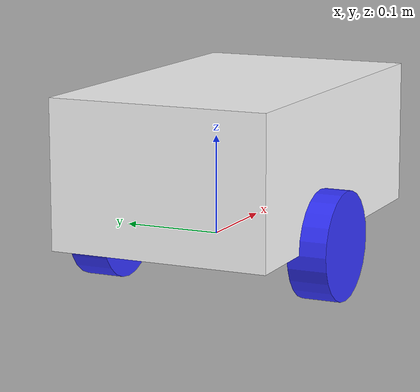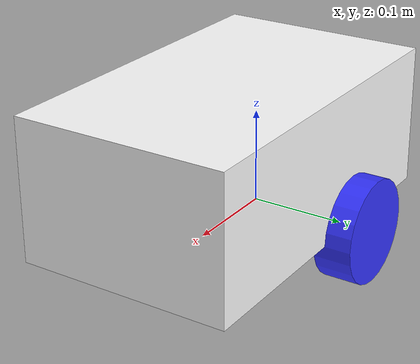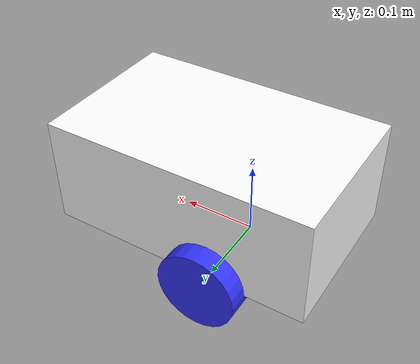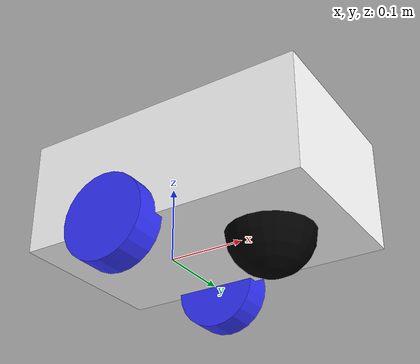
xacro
<?xml version="1.0"?>

<robot xmlns:xacro="http://www.ros.org/wiki/xacro">

    <xacro:include filename="inertial_macros.xacro"/>

    <!-- KONSTANTA MEKANIKAL                                               -->

    <!-- Sumber kebenaran: digital_twin_enhanced.py                        -->

    <!-- WHEEL_SEPARATION = 0.240 m → jarak antar roda                    -->

    <!-- WHEEL_DIAMETER   = 0.110 m → radius = 0.055 m                   -->

    <xacro:property name="wheel_separation" value="0.240"/>

    <xacro:property name="wheel_radius"     value="0.055"/>

    <xacro:property name="wheel_width"      value="0.040"/>

    <!-- Material -->

    <material name="white">  <color rgba="1 1 1 1"/>         </material>

    <material name="orange"> <color rgba="1 0.3 0.1 1"/>     </material>

    <material name="blue">   <color rgba="0.2 0.2 1 1"/>     </material>

    <material name="black">  <color rgba="0 0 0 1"/>         </material>

    <material name="red">    <color rgba="1 0 0 1"/>         </material>

    <!-- BASE LINK — titik referensi tengah antara dua roda aktif         -->

    <link name="base_link"/>

    <!-- BASE FOOTPRINT — proyeksi base_link ke lantai                    -->

    <!-- slam_toolbox mengharapkan frame ini                              -->

    <joint name="base_footprint_joint" type="fixed">

        <parent link="base_link"/>

        <child  link="base_footprint"/>

        <origin xyz="0 0 0" rpy="0 0 0"/>

    </joint>

    <link name="base_footprint"/>

    <!-- CHASSIS                                                           -->

    <joint name="chassis_joint" type="fixed">

        <parent link="base_link"/>

        <child  link="chassis"/>

        <origin xyz="-0.1 0 0"/>

    </joint>

    <link name="chassis">

        <visual>

            <origin xyz="0.15 0 0.075"/>

            <geometry>

                <box size="0.37 0.225 0.15"/>

            </geometry>

            <material name="white"/>

        </visual>

        <collision>

            <origin xyz="0.15 0 0.075"/>

            <geometry>

                <box size="0.37 0.225 0.15"/>

            </geometry>

        </collision>

        <xacro:inertial_box mass="0.5" x="0.37" y="0.225" z="0.15">

            <origin xyz="0.15 0 0.075" rpy="0 0 0"/>

        </xacro:inertial_box>

    </link>

    <gazebo reference="chassis">

        <material>Gazebo/White</material>

    </gazebo>

    <!-- LEFT WHEEL                                                        -->

    <!-- y = +WHEEL_SEPARATION/2 = +0.120 m                              -->

    <!-- KOREKSI dari amr_ws lama: 0.13 → 0.120                          -->

    <joint name="left_wheel_joint" type="continuous">

        <parent link="base_link"/>

        <child  link="left_wheel"/>

        <origin xyz="0 ${wheel_separation/2} 0"

                rpy="-${pi/2} 0 0"/>

        <axis xyz="0 0 1"/>

    </joint>

    <link name="left_wheel">

        <visual>

            <geometry>

                <cylinder radius="${wheel_radius}" length="${wheel_width}"/>

            </geometry>

            <material name="blue"/>

        </visual>

        <collision>

            <geometry>

                <cylinder radius="${wheel_radius}" length="${wheel_width}"/>

            </geometry>

        </collision>

        <xacro:inertial_cylinder mass="0.1"

                                  length="${wheel_width}"

                                  radius="${wheel_radius}">

            <origin xyz="0 0 0" rpy="0 0 0"/>

        </xacro:inertial_cylinder>

    </link>

    <gazebo reference="left_wheel">

        <material>Gazebo/Blue</material>

    </gazebo>

    <!-- RIGHT WHEEL                                                       -->

    <!-- y = -WHEEL_SEPARATION/2 = -0.120 m                              -->

    <!-- KOREKSI dari amr_ws lama: -0.13 → -0.120                        -->

    <joint name="right_wheel_joint" type="continuous">

        <parent link="base_link"/>

        <child  link="right_wheel"/>

        <origin xyz="0 -${wheel_separation/2} 0"

                rpy="${pi/2} 0 0"/>

        <axis xyz="0 0 -1"/>

    </joint>

    <link name="right_wheel">

        <visual>

            <geometry>

                <cylinder radius="${wheel_radius}" length="${wheel_width}"/>

            </geometry>

            <material name="blue"/>

        </visual>

        <collision>

            <geometry>

                <cylinder radius="${wheel_radius}" length="${wheel_width}"/>

            </geometry>

        </collision>

        <xacro:inertial_cylinder mass="0.1"

                                  length="${wheel_width}"

                                  radius="${wheel_radius}">

            <origin xyz="0 0 0" rpy="0 0 0"/>

        </xacro:inertial_cylinder>

    </link>

    <gazebo reference="right_wheel">

        <material>Gazebo/Blue</material>

    </gazebo>

    <!-- CASTER WHEEL — roda idle depan                                   -->

    <joint name="caster_wheel_joint" type="fixed">

        <parent link="chassis"/>

        <child  link="caster_wheel"/>

        <origin xyz="0.24 0 0"/>

    </joint>

    <link name="caster_wheel">

        <visual>

            <geometry>

                <sphere radius="${wheel_radius}"/>

            </geometry>

            <material name="black"/>

        </visual>

        <collision>

            <geometry>

                <sphere radius="${wheel_radius}"/>

            </geometry>

        </collision>

        <xacro:inertial_sphere mass="0.1" radius="${wheel_radius}">

            <origin xyz="0 0 0" rpy="0 0 0"/>

        </xacro:inertial_sphere>

    </link>

</robot>

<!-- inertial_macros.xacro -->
<robot xmlns:xacro="http://www.ros.org/wiki/xacro">

    <xacro:macro name="inertial_sphere" params="mass radius *origin">

        <inertial>

            <xacro:insert_block name="origin"/>

            <mass value="${mass}"/>

            <inertia ixx="${(2/5) * mass * (radius*radius)}"

                     ixy="0.0" ixz="0.0"

                     iyy="${(2/5) * mass * (radius*radius)}"

                     iyz="0.0"

                     izz="${(2/5) * mass * (radius*radius)}"/>

        </inertial>

    </xacro:macro>

    <xacro:macro name="inertial_box" params="mass x y z *origin">

        <inertial>

            <xacro:insert_block name="origin"/>

            <mass value="${mass}"/>

            <inertia ixx="${(1/12) * mass * (y*y+z*z)}"

                     ixy="0.0" ixz="0.0"

                     iyy="${(1/12) * mass * (x*x+z*z)}"

                     iyz="0.0"

                     izz="${(1/12) * mass * (x*x+y*y)}"/>

        </inertial>

    </xacro:macro>

    <xacro:macro name="inertial_cylinder" params="mass length radius *origin">

        <inertial>

            <xacro:insert_block name="origin"/>

            <mass value="${mass}"/>

            <inertia ixx="${(1/12) * mass * (3*radius*radius + length*length)}"

                     ixy="0.0" ixz="0.0"

                     iyy="${(1/12) * mass * (3*radius*radius + length*length)}"

                     iyz="0.0"

                     izz="${(1/2) * mass * (radius*radius)}"/>

        </inertial>

    </xacro:macro>

</robot>
